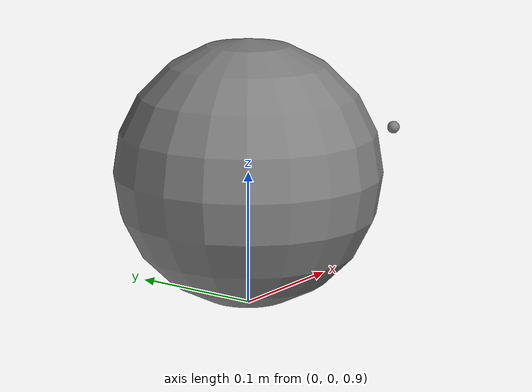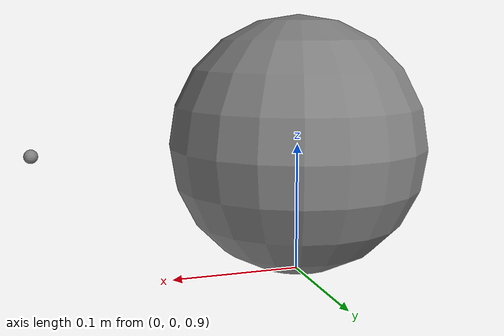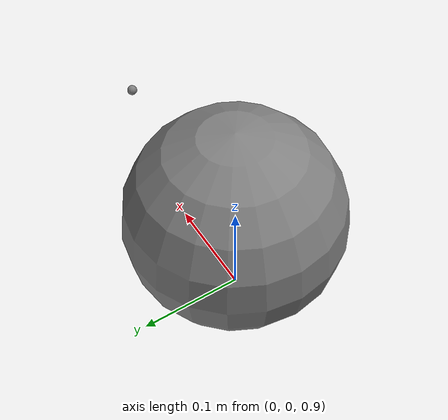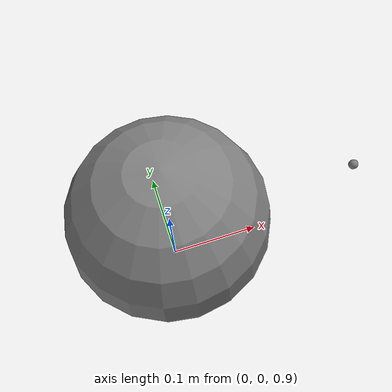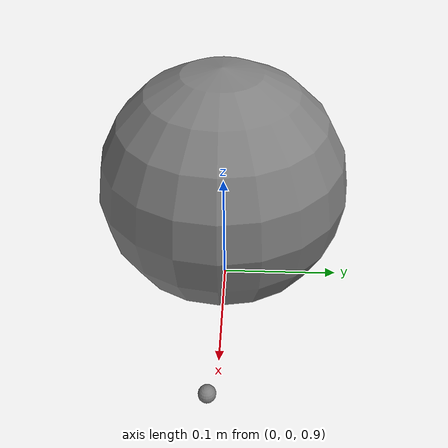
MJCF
<mujoco model="mode_a_velocity">
            <worldbody>
                <body name="b1" pos="0 0 1">
                    <joint name="j1" type="hinge" axis="0 1 0"/>
                    <geom type="sphere" size="0.1" mass="1.0"/>
                    <site name="thrust" pos="0.2 0 0"/>
                </body>
            </worldbody>
            <actuator>
                <general name="jet" site="thrust" gear="0 0 1 0 0 0"/>
            </actuator>
        </mujoco>
